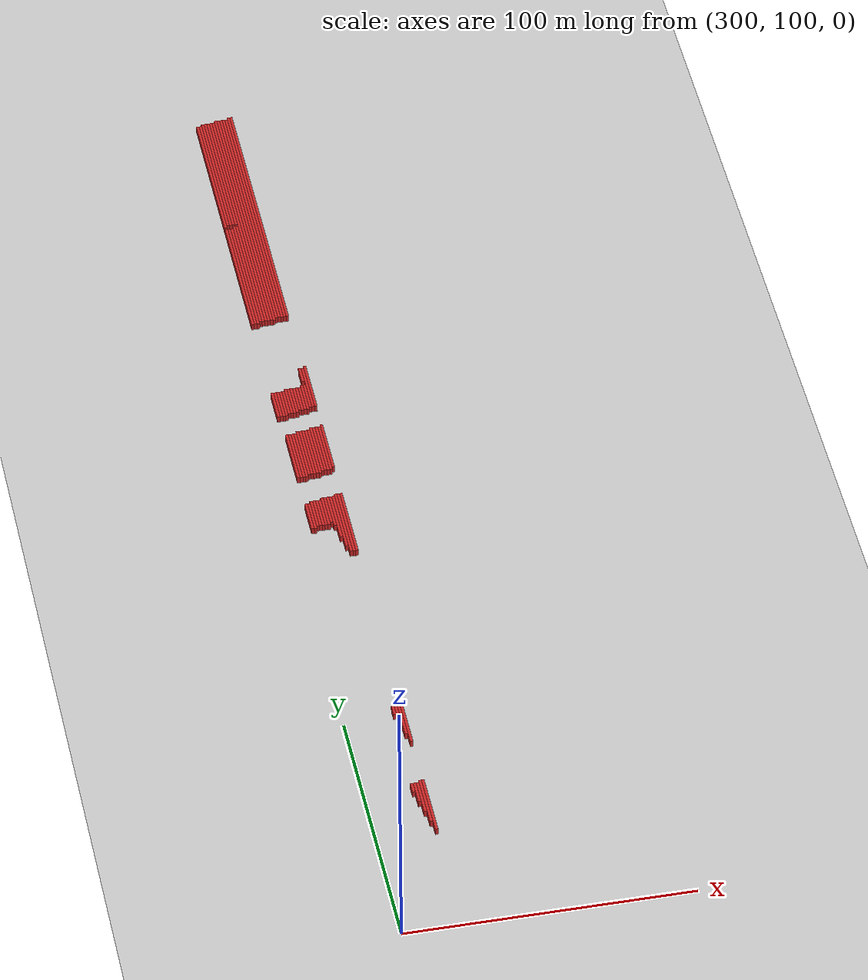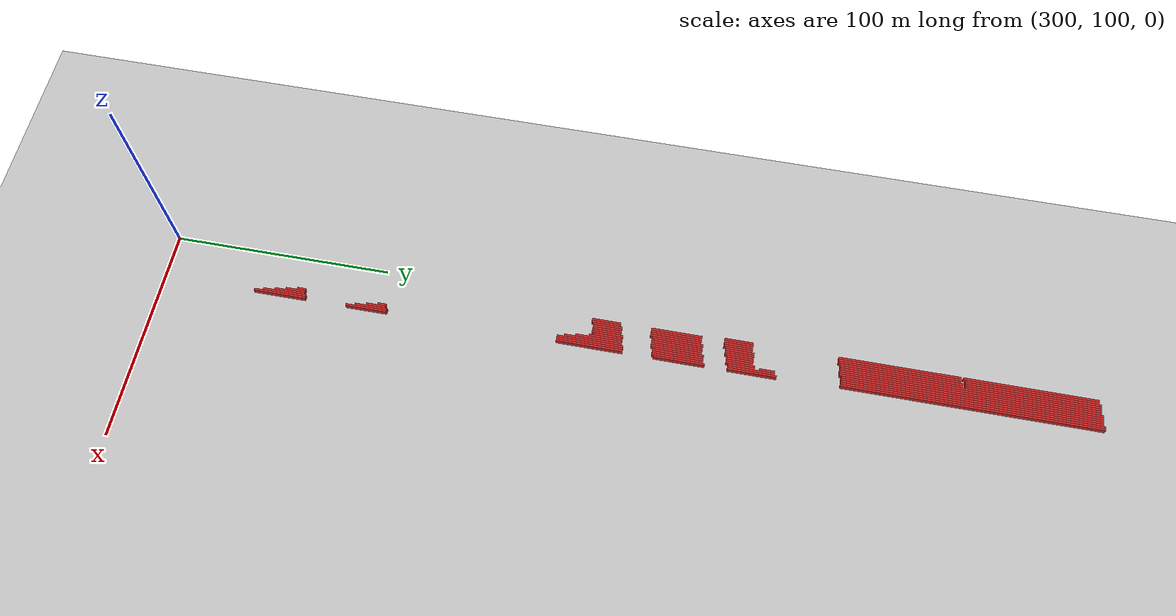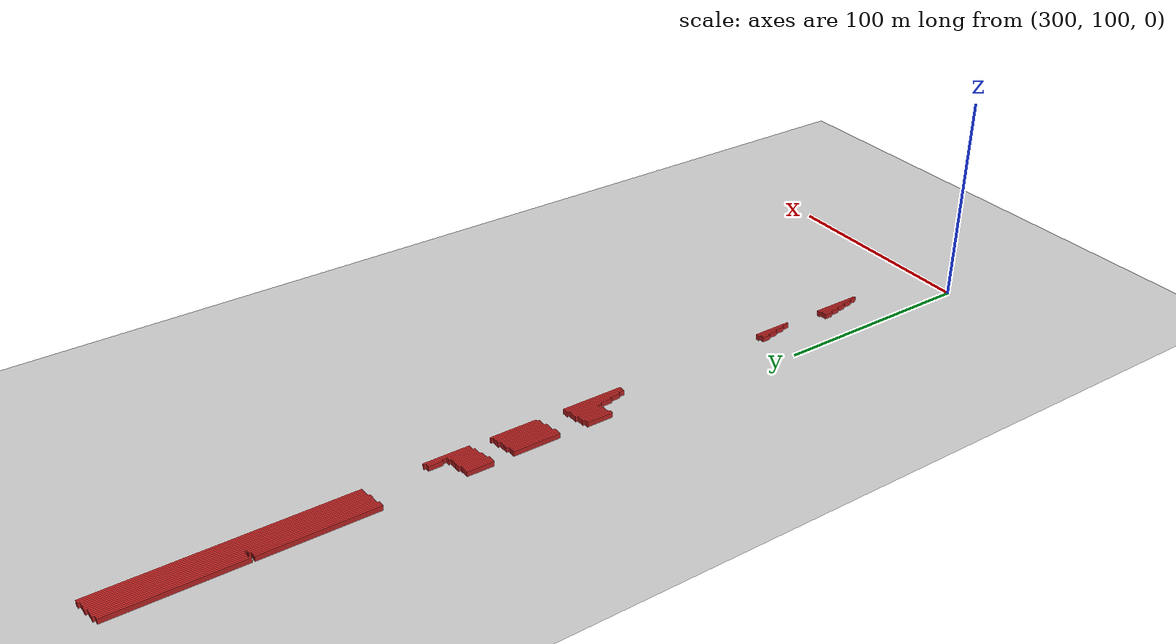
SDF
<sdf version="1.4">
 <world name="1_wall">
  <model name="ground_plane">
   <static>1</static>
   <link name="link">
    <collision name="collision">
     <geometry><plane><normal>0 0 1</normal><size>1000 1000</size></plane></geometry>
     <surface><friction><ode><mu>100</mu><mu2>50</mu2></ode></friction></surface>
    </collision>
    <visual name="visual">
     <cast_shadows>0</cast_shadows>
     <geometry><plane><normal>0 0 1</normal><size>10000 10000</size></plane></geometry>
     <material>
      <script><uri>file://media/materials/scripts/gazebo.material</uri><name>Gazebo/Grey</name></script>
     </material>
    </visual>
    <velocity_decay><linear>0</linear><angular>0</angular></velocity_decay>
   </link>
  </model>
  <model name="Wall_1655">
   <static>1</static>
   <link name="Wall_1655">
    <collision name="Wall_Collision_1655">
     <geometry><box><size>13.0 1.0 2.5</size></box></geometry>
     <pose>0 0 1.25 0 -0 0</pose>
    </collision>
    <visual name="Wall_Visual_1655">
     <pose>0 0 1.25 0 -0 0</pose>
     <geometry><box><size>13.0 1.0 2.5</size></box></geometry>
     <material>
      <script><uri>file://media/materials/scripts/gazebo.material</uri><name>Gazebo/Red</name></script>
     </material>
    </visual>
    <velocity_decay><linear>0</linear><angular>0</angular></velocity_decay>
    <pose>306.5 363.5 0 0 0 1.5707963267948966</pose>
   </link>
  </model>
  <model name="Wall_1656">
   <static>1</static>
   <link name="Wall_1656">
    <collision name="Wall_Collision_1656">
     <geometry><box><size>54.0 1.0 2.5</size></box></geometry>
     <pose>0 0 1.25 0 -0 0</pose>
    </collision>
    <visual name="Wall_Visual_1656">
     <pose>0 0 1.25 0 -0 0</pose>
     <geometry><box><size>54.0 1.0 2.5</size></box></geometry>
     <material>
      <script><uri>file://media/materials/scripts/gazebo.material</uri><name>Gazebo/Red</name></script>
     </material>
    </visual>
    <velocity_decay><linear>0</linear><angular>0</angular></velocity_decay>
    <pose>306.5 435.0 0 0 0 1.5707963267948966</pose>
   </link>
  </model>
  <model name="Wall_1657">
   <static>1</static>
   <link name="Wall_1657">
    <collision name="Wall_Collision_1657">
     <geometry><box><size>59.0 1.0 2.5</size></box></geometry>
     <pose>0 0 1.25 0 -0 0</pose>
    </collision>
    <visual name="Wall_Visual_1657">
     <pose>0 0 1.25 0 -0 0</pose>
     <geometry><box><size>59.0 1.0 2.5</size></box></geometry>
     <material>
      <script><uri>file://media/materials/scripts/gazebo.material</uri><name>Gazebo/Red</name></script>
     </material>
    </visual>
    <velocity_decay><linear>0</linear><angular>0</angular></velocity_decay>
    <pose>306.5 492.5 0 0 0 1.5707963267948966</pose>
   </link>
  </model>
  <model name="Wall_1658">
   <static>1</static>
   <link name="Wall_1658">
    <collision name="Wall_Collision_1658">
     <geometry><box><size>13.0 1.0 2.5</size></box></geometry>
     <pose>0 0 1.25 0 -0 0</pose>
    </collision>
    <visual name="Wall_Visual_1658">
     <pose>0 0 1.25 0 -0 0</pose>
     <geometry><box><size>13.0 1.0 2.5</size></box></geometry>
     <material>
      <script><uri>file://media/materials/scripts/gazebo.material</uri><name>Gazebo/Red</name></script>
     </material>
    </visual>
    <velocity_decay><linear>0</linear><angular>0</angular></velocity_decay>
    <pose>307.5 303.5 0 0 0 1.5707963267948966</pose>
   </link>
  </model>
  <model name="Wall_1659">
   <static>1</static>
   <link name="Wall_1659">
    <collision name="Wall_Collision_1659">
     <geometry><box><size>23.0 1.0 2.5</size></box></geometry>
     <pose>0 0 1.25 0 -0 0</pose>
    </collision>
    <visual name="Wall_Visual_1659">
     <pose>0 0 1.25 0 -0 0</pose>
     <geometry><box><size>23.0 1.0 2.5</size></box></geometry>
     <material>
      <script><uri>file://media/materials/scripts/gazebo.material</uri><name>Gazebo/Red</name></script>
     </material>
    </visual>
    <velocity_decay><linear>0</linear><angular>0</angular></velocity_decay>
    <pose>307.5 335.5 0 0 0 1.5707963267948966</pose>
   </link>
  </model>
  <model name="Wall_1660">
   <static>1</static>
   <link name="Wall_1660">
    <collision name="Wall_Collision_1660">
     <geometry><box><size>13.0 1.0 2.5</size></box></geometry>
     <pose>0 0 1.25 0 -0 0</pose>
    </collision>
    <visual name="Wall_Visual_1660">
     <pose>0 0 1.25 0 -0 0</pose>
     <geometry><box><size>13.0 1.0 2.5</size></box></geometry>
     <material>
      <script><uri>file://media/materials/scripts/gazebo.material</uri><name>Gazebo/Red</name></script>
     </material>
    </visual>
    <velocity_decay><linear>0</linear><angular>0</angular></velocity_decay>
    <pose>307.5 363.5 0 0 0 1.5707963267948966</pose>
   </link>
  </model>
  <model name="Wall_1661">
   <static>1</static>
   <link name="Wall_1661">
    <collision name="Wall_Collision_1661">
     <geometry><box><size>54.0 1.0 2.5</size></box></geometry>
     <pose>0 0 1.25 0 -0 0</pose>
    </collision>
    <visual name="Wall_Visual_1661">
     <pose>0 0 1.25 0 -0 0</pose>
     <geometry><box><size>54.0 1.0 2.5</size></box></geometry>
     <material>
      <script><uri>file://media/materials/scripts/gazebo.material</uri><name>Gazebo/Red</name></script>
     </material>
    </visual>
    <velocity_decay><linear>0</linear><angular>0</angular></velocity_decay>
    <pose>307.5 435.0 0 0 0 1.5707963267948966</pose>
   </link>
  </model>
  <model name="Wall_1662">
   <static>1</static>
   <link name="Wall_1662">
    <collision name="Wall_Collision_1662">
     <geometry><box><size>58.0 1.0 2.5</size></box></geometry>
     <pose>0 0 1.25 0 -0 0</pose>
    </collision>
    <visual name="Wall_Visual_1662">
     <pose>0 0 1.25 0 -0 0</pose>
     <geometry><box><size>58.0 1.0 2.5</size></box></geometry>
     <material>
      <script><uri>file://media/materials/scripts/gazebo.material</uri><name>Gazebo/Red</name></script>
     </material>
    </visual>
    <velocity_decay><linear>0</linear><angular>0</angular></velocity_decay>
    <pose>307.5 493.0 0 0 0 1.5707963267948966</pose>
   </link>
  </model>
  <model name="Wall_1663">
   <static>1</static>
   <link name="Wall_1663">
    <collision name="Wall_Collision_1663">
     <geometry><box><size>13.0 1.0 2.5</size></box></geometry>
     <pose>0 0 1.25 0 -0 0</pose>
    </collision>
    <visual name="Wall_Visual_1663">
     <pose>0 0 1.25 0 -0 0</pose>
     <geometry><box><size>13.0 1.0 2.5</size></box></geometry>
     <material>
      <script><uri>file://media/materials/scripts/gazebo.material</uri><name>Gazebo/Red</name></script>
     </material>
    </visual>
    <velocity_decay><linear>0</linear><angular>0</angular></velocity_decay>
    <pose>308.5 303.5 0 0 0 1.5707963267948966</pose>
   </link>
  </model>
  <model name="Wall_1664">
   <static>1</static>
   <link name="Wall_1664">
    <collision name="Wall_Collision_1664">
     <geometry><box><size>23.0 1.0 2.5</size></box></geometry>
     <pose>0 0 1.25 0 -0 0</pose>
    </collision>
    <visual name="Wall_Visual_1664">
     <pose>0 0 1.25 0 -0 0</pose>
     <geometry><box><size>23.0 1.0 2.5</size></box></geometry>
     <material>
      <script><uri>file://media/materials/scripts/gazebo.material</uri><name>Gazebo/Red</name></script>
     </material>
    </visual>
    <velocity_decay><linear>0</linear><angular>0</angular></velocity_decay>
    <pose>308.5 335.5 0 0 0 1.5707963267948966</pose>
   </link>
  </model>
  <model name="Wall_1665">
   <static>1</static>
   <link name="Wall_1665">
    <collision name="Wall_Collision_1665">
     <geometry><box><size>13.0 1.0 2.5</size></box></geometry>
     <pose>0 0 1.25 0 -0 0</pose>
    </collision>
    <visual name="Wall_Visual_1665">
     <pose>0 0 1.25 0 -0 0</pose>
     <geometry><box><size>13.0 1.0 2.5</size></box></geometry>
     <material>
      <script><uri>file://media/materials/scripts/gazebo.material</uri><name>Gazebo/Red</name></script>
     </material>
    </visual>
    <velocity_decay><linear>0</linear><angular>0</angular></velocity_decay>
    <pose>308.5 363.5 0 0 0 1.5707963267948966</pose>
   </link>
  </model>
  <model name="Wall_1666">
   <static>1</static>
   <link name="Wall_1666">
    <collision name="Wall_Collision_1666">
     <geometry><box><size>54.0 1.0 2.5</size></box></geometry>
     <pose>0 0 1.25 0 -0 0</pose>
    </collision>
    <visual name="Wall_Visual_1666">
     <pose>0 0 1.25 0 -0 0</pose>
     <geometry><box><size>54.0 1.0 2.5</size></box></geometry>
     <material>
      <script><uri>file://media/materials/scripts/gazebo.material</uri><name>Gazebo/Red</name></script>
     </material>
    </visual>
    <velocity_decay><linear>0</linear><angular>0</angular></velocity_decay>
    <pose>308.5 435.0 0 0 0 1.5707963267948966</pose>
   </link>
  </model>
  <model name="Wall_1667">
   <static>1</static>
   <link name="Wall_1667">
    <collision name="Wall_Collision_1667">
     <geometry><box><size>59.0 1.0 2.5</size></box></geometry>
     <pose>0 0 1.25 0 -0 0</pose>
    </collision>
    <visual name="Wall_Visual_1667">
     <pose>0 0 1.25 0 -0 0</pose>
     <geometry><box><size>59.0 1.0 2.5</size></box></geometry>
     <material>
      <script><uri>file://media/materials/scripts/gazebo.material</uri><name>Gazebo/Red</name></script>
     </material>
    </visual>
    <velocity_decay><linear>0</linear><angular>0</angular></velocity_decay>
    <pose>308.5 493.5 0 0 0 1.5707963267948966</pose>
   </link>
  </model>
  <model name="Wall_1668">
   <static>1</static>
   <link name="Wall_1668">
    <collision name="Wall_Collision_1668">
     <geometry><box><size>13.0 1.0 2.5</size></box></geometry>
     <pose>0 0 1.25 0 -0 0</pose>
    </collision>
    <visual name="Wall_Visual_1668">
     <pose>0 0 1.25 0 -0 0</pose>
     <geometry><box><size>13.0 1.0 2.5</size></box></geometry>
     <material>
      <script><uri>file://media/materials/scripts/gazebo.material</uri><name>Gazebo/Red</name></script>
     </material>
    </visual>
    <velocity_decay><linear>0</linear><angular>0</angular></velocity_decay>
    <pose>309.5 304.5 0 0 0 1.5707963267948966</pose>
   </link>
  </model>
  <model name="Wall_1669">
   <static>1</static>
   <link name="Wall_1669">
    <collision name="Wall_Collision_1669">
     <geometry><box><size>23.0 1.0 2.5</size></box></geometry>
     <pose>0 0 1.25 0 -0 0</pose>
    </collision>
    <visual name="Wall_Visual_1669">
     <pose>0 0 1.25 0 -0 0</pose>
     <geometry><box><size>23.0 1.0 2.5</size></box></geometry>
     <material>
      <script><uri>file://media/materials/scripts/gazebo.material</uri><name>Gazebo/Red</name></script>
     </material>
    </visual>
    <velocity_decay><linear>0</linear><angular>0</angular></velocity_decay>
    <pose>309.5 335.5 0 0 0 1.5707963267948966</pose>
   </link>
  </model>
  <model name="Wall_1670">
   <static>1</static>
   <link name="Wall_1670">
    <collision name="Wall_Collision_1670">
     <geometry><box><size>13.0 1.0 2.5</size></box></geometry>
     <pose>0 0 1.25 0 -0 0</pose>
    </collision>
    <visual name="Wall_Visual_1670">
     <pose>0 0 1.25 0 -0 0</pose>
     <geometry><box><size>13.0 1.0 2.5</size></box></geometry>
     <material>
      <script><uri>file://media/materials/scripts/gazebo.material</uri><name>Gazebo/Red</name></script>
     </material>
    </visual>
    <velocity_decay><linear>0</linear><angular>0</angular></velocity_decay>
    <pose>309.5 363.5 0 0 0 1.5707963267948966</pose>
   </link>
  </model>
  <model name="Wall_1671">
   <static>1</static>
   <link name="Wall_1671">
    <collision name="Wall_Collision_1671">
     <geometry><box><size>54.0 1.0 2.5</size></box></geometry>
     <pose>0 0 1.25 0 -0 0</pose>
    </collision>
    <visual name="Wall_Visual_1671">
     <pose>0 0 1.25 0 -0 0</pose>
     <geometry><box><size>54.0 1.0 2.5</size></box></geometry>
     <material>
      <script><uri>file://media/materials/scripts/gazebo.material</uri><name>Gazebo/Red</name></script>
     </material>
    </visual>
    <velocity_decay><linear>0</linear><angular>0</angular></velocity_decay>
    <pose>309.5 436.0 0 0 0 1.5707963267948966</pose>
   </link>
  </model>
  <model name="Wall_1672">
   <static>1</static>
   <link name="Wall_1672">
    <collision name="Wall_Collision_1672">
     <geometry><box><size>59.0 1.0 2.5</size></box></geometry>
     <pose>0 0 1.25 0 -0 0</pose>
    </collision>
    <visual name="Wall_Visual_1672">
     <pose>0 0 1.25 0 -0 0</pose>
     <geometry><box><size>59.0 1.0 2.5</size></box></geometry>
     <material>
      <script><uri>file://media/materials/scripts/gazebo.material</uri><name>Gazebo/Red</name></script>
     </material>
    </visual>
    <velocity_decay><linear>0</linear><angular>0</angular></velocity_decay>
    <pose>309.5 493.5 0 0 0 1.5707963267948966</pose>
   </link>
  </model>
  <model name="Wall_1673">
   <static>1</static>
   <link name="Wall_1673">
    <collision name="Wall_Collision_1673">
     <geometry><box><size>13.0 1.0 2.5</size></box></geometry>
     <pose>0 0 1.25 0 -0 0</pose>
    </collision>
    <visual name="Wall_Visual_1673">
     <pose>0 0 1.25 0 -0 0</pose>
     <geometry><box><size>13.0 1.0 2.5</size></box></geometry>
     <material>
      <script><uri>file://media/materials/scripts/gazebo.material</uri><name>Gazebo/Red</name></script>
     </material>
    </visual>
    <velocity_decay><linear>0</linear><angular>0</angular></velocity_decay>
    <pose>310.5 304.5 0 0 0 1.5707963267948966</pose>
   </link>
  </model>
  <model name="Wall_1674">
   <static>1</static>
   <link name="Wall_1674">
    <collision name="Wall_Collision_1674">
     <geometry><box><size>23.0 1.0 2.5</size></box></geometry>
     <pose>0 0 1.25 0 -0 0</pose>
    </collision>
    <visual name="Wall_Visual_1674">
     <pose>0 0 1.25 0 -0 0</pose>
     <geometry><box><size>23.0 1.0 2.5</size></box></geometry>
     <material>
      <script><uri>file://media/materials/scripts/gazebo.material</uri><name>Gazebo/Red</name></script>
     </material>
    </visual>
    <velocity_decay><linear>0</linear><angular>0</angular></velocity_decay>
    <pose>310.5 335.5 0 0 0 1.5707963267948966</pose>
   </link>
  </model>
  <model name="Wall_1675">
   <static>1</static>
   <link name="Wall_1675">
    <collision name="Wall_Collision_1675">
     <geometry><box><size>12.0 1.0 2.5</size></box></geometry>
     <pose>0 0 1.25 0 -0 0</pose>
    </collision>
    <visual name="Wall_Visual_1675">
     <pose>0 0 1.25 0 -0 0</pose>
     <geometry><box><size>12.0 1.0 2.5</size></box></geometry>
     <material>
      <script><uri>file://media/materials/scripts/gazebo.material</uri><name>Gazebo/Red</name></script>
     </material>
    </visual>
    <velocity_decay><linear>0</linear><angular>0</angular></velocity_decay>
    <pose>310.5 364.0 0 0 0 1.5707963267948966</pose>
   </link>
  </model>
  <model name="Wall_1676">
   <static>1</static>
   <link name="Wall_1676">
    <collision name="Wall_Collision_1676">
     <geometry><box><size>54.0 1.0 2.5</size></box></geometry>
     <pose>0 0 1.25 0 -0 0</pose>
    </collision>
    <visual name="Wall_Visual_1676">
     <pose>0 0 1.25 0 -0 0</pose>
     <geometry><box><size>54.0 1.0 2.5</size></box></geometry>
     <material>
      <script><uri>file://media/materials/scripts/gazebo.material</uri><name>Gazebo/Red</name></script>
     </material>
    </visual>
    <velocity_decay><linear>0</linear><angular>0</angular></velocity_decay>
    <pose>310.5 436.0 0 0 0 1.5707963267948966</pose>
   </link>
  </model>
  <model name="Wall_1677">
   <static>1</static>
   <link name="Wall_1677">
    <collision name="Wall_Collision_1677">
     <geometry><box><size>59.0 1.0 2.5</size></box></geometry>
     <pose>0 0 1.25 0 -0 0</pose>
    </collision>
    <visual name="Wall_Visual_1677">
     <pose>0 0 1.25 0 -0 0</pose>
     <geometry><box><size>59.0 1.0 2.5</size></box></geometry>
     <material>
      <script><uri>file://media/materials/scripts/gazebo.material</uri><name>Gazebo/Red</name></script>
     </material>
    </visual>
    <velocity_decay><linear>0</linear><angular>0</angular></velocity_decay>
    <pose>310.5 493.5 0 0 0 1.5707963267948966</pose>
   </link>
  </model>
  <model name="Wall_1678">
   <static>1</static>
   <link name="Wall_1678">
    <collision name="Wall_Collision_1678">
     <geometry><box><size>13.0 1.0 2.5</size></box></geometry>
     <pose>0 0 1.25 0 -0 0</pose>
    </collision>
    <visual name="Wall_Visual_1678">
     <pose>0 0 1.25 0 -0 0</pose>
     <geometry><box><size>13.0 1.0 2.5</size></box></geometry>
     <material>
      <script><uri>file://media/materials/scripts/gazebo.material</uri><name>Gazebo/Red</name></script>
     </material>
    </visual>
    <velocity_decay><linear>0</linear><angular>0</angular></velocity_decay>
    <pose>311.5 304.5 0 0 0 1.5707963267948966</pose>
   </link>
  </model>
  <model name="Wall_1679">
   <static>1</static>
   <link name="Wall_1679">
    <collision name="Wall_Collision_1679">
     <geometry><box><size>23.0 1.0 2.5</size></box></geometry>
     <pose>0 0 1.25 0 -0 0</pose>
    </collision>
    <visual name="Wall_Visual_1679">
     <pose>0 0 1.25 0 -0 0</pose>
     <geometry><box><size>23.0 1.0 2.5</size></box></geometry>
     <material>
      <script><uri>file://media/materials/scripts/gazebo.material</uri><name>Gazebo/Red</name></script>
     </material>
    </visual>
    <velocity_decay><linear>0</linear><angular>0</angular></velocity_decay>
    <pose>311.5 336.5 0 0 0 1.5707963267948966</pose>
   </link>
  </model>
  <model name="Wall_1680">
   <static>1</static>
   <link name="Wall_1680">
    <collision name="Wall_Collision_1680">
     <geometry><box><size>13.0 1.0 2.5</size></box></geometry>
     <pose>0 0 1.25 0 -0 0</pose>
    </collision>
    <visual name="Wall_Visual_1680">
     <pose>0 0 1.25 0 -0 0</pose>
     <geometry><box><size>13.0 1.0 2.5</size></box></geometry>
     <material>
      <script><uri>file://media/materials/scripts/gazebo.material</uri><name>Gazebo/Red</name></script>
     </material>
    </visual>
    <velocity_decay><linear>0</linear><angular>0</angular></velocity_decay>
    <pose>311.5 364.5 0 0 0 1.5707963267948966</pose>
   </link>
  </model>
  <model name="Wall_1681">
   <static>1</static>
   <link name="Wall_1681">
    <collision name="Wall_Collision_1681">
     <geometry><box><size>114.0 1.0 2.5</size></box></geometry>
     <pose>0 0 1.25 0 -0 0</pose>
    </collision>
    <visual name="Wall_Visual_1681">
     <pose>0 0 1.25 0 -0 0</pose>
     <geometry><box><size>114.0 1.0 2.5</size></box></geometry>
     <material>
      <script><uri>file://media/materials/scripts/gazebo.material</uri><name>Gazebo/Red</name></script>
     </material>
    </visual>
    <velocity_decay><linear>0</linear><angular>0</angular></velocity_decay>
    <pose>311.5 466.0 0 0 0 1.5707963267948966</pose>
   </link>
  </model>
  <model name="Wall_1682">
   <static>1</static>
   <link name="Wall_1682">
    <collision name="Wall_Collision_1682">
     <geometry><box><size>13.0 1.0 2.5</size></box></geometry>
     <pose>0 0 1.25 0 -0 0</pose>
    </collision>
    <visual name="Wall_Visual_1682">
     <pose>0 0 1.25 0 -0 0</pose>
     <geometry><box><size>13.0 1.0 2.5</size></box></geometry>
     <material>
      <script><uri>file://media/materials/scripts/gazebo.material</uri><name>Gazebo/Red</name></script>
     </material>
    </visual>
    <velocity_decay><linear>0</linear><angular>0</angular></velocity_decay>
    <pose>312.5 304.5 0 0 0 1.5707963267948966</pose>
   </link>
  </model>
  <model name="Wall_1683">
   <static>1</static>
   <link name="Wall_1683">
    <collision name="Wall_Collision_1683">
     <geometry><box><size>23.0 1.0 2.5</size></box></geometry>
     <pose>0 0 1.25 0 -0 0</pose>
    </collision>
    <visual name="Wall_Visual_1683">
     <pose>0 0 1.25 0 -0 0</pose>
     <geometry><box><size>23.0 1.0 2.5</size></box></geometry>
     <material>
      <script><uri>file://media/materials/scripts/gazebo.material</uri><name>Gazebo/Red</name></script>
     </material>
    </visual>
    <velocity_decay><linear>0</linear><angular>0</angular></velocity_decay>
    <pose>312.5 336.5 0 0 0 1.5707963267948966</pose>
   </link>
  </model>
  <model name="Wall_1684">
   <static>1</static>
   <link name="Wall_1684">
    <collision name="Wall_Collision_1684">
     <geometry><box><size>13.0 1.0 2.5</size></box></geometry>
     <pose>0 0 1.25 0 -0 0</pose>
    </collision>
    <visual name="Wall_Visual_1684">
     <pose>0 0 1.25 0 -0 0</pose>
     <geometry><box><size>13.0 1.0 2.5</size></box></geometry>
     <material>
      <script><uri>file://media/materials/scripts/gazebo.material</uri><name>Gazebo/Red</name></script>
     </material>
    </visual>
    <velocity_decay><linear>0</linear><angular>0</angular></velocity_decay>
    <pose>312.5 364.5 0 0 0 1.5707963267948966</pose>
   </link>
  </model>
  <model name="Wall_1685">
   <static>1</static>
   <link name="Wall_1685">
    <collision name="Wall_Collision_1685">
     <geometry><box><size>114.0 1.0 2.5</size></box></geometry>
     <pose>0 0 1.25 0 -0 0</pose>
    </collision>
    <visual name="Wall_Visual_1685">
     <pose>0 0 1.25 0 -0 0</pose>
     <geometry><box><size>114.0 1.0 2.5</size></box></geometry>
     <material>
      <script><uri>file://media/materials/scripts/gazebo.material</uri><name>Gazebo/Red</name></script>
     </material>
    </visual>
    <velocity_decay><linear>0</linear><angular>0</angular></velocity_decay>
    <pose>312.5 466.0 0 0 0 1.5707963267948966</pose>
   </link>
  </model>
  <model name="Wall_1686">
   <static>1</static>
   <link name="Wall_1686">
    <collision name="Wall_Collision_1686">
     <geometry><box><size>14.0 1.0 2.5</size></box></geometry>
     <pose>0 0 1.25 0 -0 0</pose>
    </collision>
    <visual name="Wall_Visual_1686">
     <pose>0 0 1.25 0 -0 0</pose>
     <geometry><box><size>14.0 1.0 2.5</size></box></geometry>
     <material>
      <script><uri>file://media/materials/scripts/gazebo.material</uri><name>Gazebo/Red</name></script>
     </material>
    </visual>
    <velocity_decay><linear>0</linear><angular>0</angular></velocity_decay>
    <pose>313.5 305.0 0 0 0 1.5707963267948966</pose>
   </link>
  </model>
  <model name="Wall_1687">
   <static>1</static>
   <link name="Wall_1687">
    <collision name="Wall_Collision_1687">
     <geometry><box><size>23.0 1.0 2.5</size></box></geometry>
     <pose>0 0 1.25 0 -0 0</pose>
    </collision>
    <visual name="Wall_Visual_1687">
     <pose>0 0 1.25 0 -0 0</pose>
     <geometry><box><size>23.0 1.0 2.5</size></box></geometry>
     <material>
      <script><uri>file://media/materials/scripts/gazebo.material</uri><name>Gazebo/Red</name></script>
     </material>
    </visual>
    <velocity_decay><linear>0</linear><angular>0</angular></velocity_decay>
    <pose>313.5 336.5 0 0 0 1.5707963267948966</pose>
   </link>
  </model>
  <model name="Wall_1688">
   <static>1</static>
   <link name="Wall_1688">
    <collision name="Wall_Collision_1688">
     <geometry><box><size>13.0 1.0 2.5</size></box></geometry>
     <pose>0 0 1.25 0 -0 0</pose>
    </collision>
    <visual name="Wall_Visual_1688">
     <pose>0 0 1.25 0 -0 0</pose>
     <geometry><box><size>13.0 1.0 2.5</size></box></geometry>
     <material>
      <script><uri>file://media/materials/scripts/gazebo.material</uri><name>Gazebo/Red</name></script>
     </material>
    </visual>
    <velocity_decay><linear>0</linear><angular>0</angular></velocity_decay>
    <pose>313.5 364.5 0 0 0 1.5707963267948966</pose>
   </link>
  </model>
  <model name="Wall_1689">
   <static>1</static>
   <link name="Wall_1689">
    <collision name="Wall_Collision_1689">
     <geometry><box><size>115.0 1.0 2.5</size></box></geometry>
     <pose>0 0 1.25 0 -0 0</pose>
    </collision>
    <visual name="Wall_Visual_1689">
     <pose>0 0 1.25 0 -0 0</pose>
     <geometry><box><size>115.0 1.0 2.5</size></box></geometry>
     <material>
      <script><uri>file://media/materials/scripts/gazebo.material</uri><name>Gazebo/Red</name></script>
     </material>
    </visual>
    <velocity_decay><linear>0</linear><angular>0</angular></velocity_decay>
    <pose>313.5 466.5 0 0 0 1.5707963267948966</pose>
   </link>
  </model>
  <model name="Wall_1690">
   <static>1</static>
   <link name="Wall_1690">
    <collision name="Wall_Collision_1690">
     <geometry><box><size>13.0 1.0 2.5</size></box></geometry>
     <pose>0 0 1.25 0 -0 0</pose>
    </collision>
    <visual name="Wall_Visual_1690">
     <pose>0 0 1.25 0 -0 0</pose>
     <geometry><box><size>13.0 1.0 2.5</size></box></geometry>
     <material>
      <script><uri>file://media/materials/scripts/gazebo.material</uri><name>Gazebo/Red</name></script>
     </material>
    </visual>
    <velocity_decay><linear>0</linear><angular>0</angular></velocity_decay>
    <pose>314.5 305.5 0 0 0 1.5707963267948966</pose>
   </link>
  </model>
  <model name="Wall_1691">
   <static>1</static>
   <link name="Wall_1691">
    <collision name="Wall_Collision_1691">
     <geometry><box><size>23.0 1.0 2.5</size></box></geometry>
     <pose>0 0 1.25 0 -0 0</pose>
    </collision>
    <visual name="Wall_Visual_1691">
     <pose>0 0 1.25 0 -0 0</pose>
     <geometry><box><size>23.0 1.0 2.5</size></box></geometry>
     <material>
      <script><uri>file://media/materials/scripts/gazebo.material</uri><name>Gazebo/Red</name></script>
     </material>
    </visual>
    <velocity_decay><linear>0</linear><angular>0</angular></velocity_decay>
    <pose>314.5 336.5 0 0 0 1.5707963267948966</pose>
   </link>
  </model>
  <model name="Wall_1692">
   <static>1</static>
   <link name="Wall_1692">
    <collision name="Wall_Collision_1692">
     <geometry><box><size>12.0 1.0 2.5</size></box></geometry>
     <pose>0 0 1.25 0 -0 0</pose>
    </collision>
    <visual name="Wall_Visual_1692">
     <pose>0 0 1.25 0 -0 0</pose>
     <geometry><box><size>12.0 1.0 2.5</size></box></geometry>
     <material>
      <script><uri>file://media/materials/scripts/gazebo.material</uri><name>Gazebo/Red</name></script>
     </material>
    </visual>
    <velocity_decay><linear>0</linear><angular>0</angular></velocity_decay>
    <pose>314.5 365.0 0 0 0 1.5707963267948966</pose>
   </link>
  </model>
  <model name="Wall_1693">
   <static>1</static>
   <link name="Wall_1693">
    <collision name="Wall_Collision_1693">
     <geometry><box><size>115.0 1.0 2.5</size></box></geometry>
     <pose>0 0 1.25 0 -0 0</pose>
    </collision>
    <visual name="Wall_Visual_1693">
     <pose>0 0 1.25 0 -0 0</pose>
     <geometry><box><size>115.0 1.0 2.5</size></box></geometry>
     <material>
      <script><uri>file://media/materials/scripts/gazebo.material</uri><name>Gazebo/Red</name></script>
     </material>
    </visual>
    <velocity_decay><linear>0</linear><angular>0</angular></velocity_decay>
    <pose>314.5 466.5 0 0 0 1.5707963267948966</pose>
   </link>
  </model>
  <model name="Wall_1694">
   <static>1</static>
   <link name="Wall_1694">
    <collision name="Wall_Collision_1694">
     <geometry><box><size>15.0 1.0 2.5</size></box></geometry>
     <pose>0 0 1.25 0 -0 0</pose>
    </collision>
    <visual name="Wall_Visual_1694">
     <pose>0 0 1.25 0 -0 0</pose>
     <geometry><box><size>15.0 1.0 2.5</size></box></geometry>
     <material>
      <script><uri>file://media/materials/scripts/gazebo.material</uri><name>Gazebo/Red</name></script>
     </material>
    </visual>
    <velocity_decay><linear>0</linear><angular>0</angular></velocity_decay>
    <pose>315.5 304.5 0 0 0 1.5707963267948966</pose>
   </link>
  </model>
  <model name="Wall_1695">
   <static>1</static>
   <link name="Wall_1695">
    <collision name="Wall_Collision_1695">
     <geometry><box><size>23.0 1.0 2.5</size></box></geometry>
     <pose>0 0 1.25 0 -0 0</pose>
    </collision>
    <visual name="Wall_Visual_1695">
     <pose>0 0 1.25 0 -0 0</pose>
     <geometry><box><size>23.0 1.0 2.5</size></box></geometry>
     <material>
      <script><uri>file://media/materials/scripts/gazebo.material</uri><name>Gazebo/Red</name></script>
     </material>
    </visual>
    <velocity_decay><linear>0</linear><angular>0</angular></velocity_decay>
    <pose>315.5 336.5 0 0 0 1.5707963267948966</pose>
   </link>
  </model>
  <model name="Wall_1696">
   <static>1</static>
   <link name="Wall_1696">
    <collision name="Wall_Collision_1696">
     <geometry><box><size>12.0 1.0 2.5</size></box></geometry>
     <pose>0 0 1.25 0 -0 0</pose>
    </collision>
    <visual name="Wall_Visual_1696">
     <pose>0 0 1.25 0 -0 0</pose>
     <geometry><box><size>12.0 1.0 2.5</size></box></geometry>
     <material>
      <script><uri>file://media/materials/scripts/gazebo.material</uri><name>Gazebo/Red</name></script>
     </material>
    </visual>
    <velocity_decay><linear>0</linear><angular>0</angular></velocity_decay>
    <pose>315.5 365.0 0 0 0 1.5707963267948966</pose>
   </link>
  </model>
  <model name="Wall_1697">
   <static>1</static>
   <link name="Wall_1697">
    <collision name="Wall_Collision_1697">
     <geometry><box><size>114.0 1.0 2.5</size></box></geometry>
     <pose>0 0 1.25 0 -0 0</pose>
    </collision>
    <visual name="Wall_Visual_1697">
     <pose>0 0 1.25 0 -0 0</pose>
     <geometry><box><size>114.0 1.0 2.5</size></box></geometry>
     <material>
      <script><uri>file://media/materials/scripts/gazebo.material</uri><name>Gazebo/Red</name></script>
     </material>
    </visual>
    <velocity_decay><linear>0</linear><angular>0</angular></velocity_decay>
    <pose>315.5 467.0 0 0 0 1.5707963267948966</pose>
   </link>
  </model>
  <model name="Wall_1698">
   <static>1</static>
   <link name="Wall_1698">
    <collision name="Wall_Collision_1698">
     <geometry><box><size>4.0 1.0 2.5</size></box></geometry>
     <pose>0 0 1.25 0 -0 0</pose>
    </collision>
    <visual name="Wall_Visual_1698">
     <pose>0 0 1.25 0 -0 0</pose>
     <geometry><box><size>4.0 1.0 2.5</size></box></geometry>
     <material>
      <script><uri>file://media/materials/scripts/gazebo.material</uri><name>Gazebo/Red</name></script>
     </material>
    </visual>
    <velocity_decay><linear>0</linear><angular>0</angular></velocity_decay>
    <pose>316.5 164.0 0 0 0 1.5707963267948966</pose>
   </link>
  </model>
  <model name="Wall_1699">
   <static>1</static>
   <link name="Wall_1699">
    <collision name="Wall_Collision_1699">
     <geometry><box><size>21.0 1.0 2.5</size></box></geometry>
     <pose>0 0 1.25 0 -0 0</pose>
    </collision>
    <visual name="Wall_Visual_1699">
     <pose>0 0 1.25 0 -0 0</pose>
     <geometry><box><size>21.0 1.0 2.5</size></box></geometry>
     <material>
      <script><uri>file://media/materials/scripts/gazebo.material</uri><name>Gazebo/Red</name></script>
     </material>
    </visual>
    <velocity_decay><linear>0</linear><angular>0</angular></velocity_decay>
    <pose>316.5 301.5 0 0 0 1.5707963267948966</pose>
   </link>
  </model>
  <model name="Wall_1700">
   <static>1</static>
   <link name="Wall_1700">
    <collision name="Wall_Collision_1700">
     <geometry><box><size>23.0 1.0 2.5</size></box></geometry>
     <pose>0 0 1.25 0 -0 0</pose>
    </collision>
    <visual name="Wall_Visual_1700">
     <pose>0 0 1.25 0 -0 0</pose>
     <geometry><box><size>23.0 1.0 2.5</size></box></geometry>
     <material>
      <script><uri>file://media/materials/scripts/gazebo.material</uri><name>Gazebo/Red</name></script>
     </material>
    </visual>
    <velocity_decay><linear>0</linear><angular>0</angular></velocity_decay>
    <pose>316.5 337.5 0 0 0 1.5707963267948966</pose>
   </link>
  </model>
  <model name="Wall_1701">
   <static>1</static>
   <link name="Wall_1701">
    <collision name="Wall_Collision_1701">
     <geometry><box><size>12.0 1.0 2.5</size></box></geometry>
     <pose>0 0 1.25 0 -0 0</pose>
    </collision>
    <visual name="Wall_Visual_1701">
     <pose>0 0 1.25 0 -0 0</pose>
     <geometry><box><size>12.0 1.0 2.5</size></box></geometry>
     <material>
      <script><uri>file://media/materials/scripts/gazebo.material</uri><name>Gazebo/Red</name></script>
     </material>
    </visual>
    <velocity_decay><linear>0</linear><angular>0</angular></velocity_decay>
    <pose>316.5 365.0 0 0 0 1.5707963267948966</pose>
   </link>
  </model>
  <model name="Wall_1702">
   <static>1</static>
   <link name="Wall_1702">
    <collision name="Wall_Collision_1702">
     <geometry><box><size>114.0 1.0 2.5</size></box></geometry>
     <pose>0 0 1.25 0 -0 0</pose>
    </collision>
    <visual name="Wall_Visual_1702">
     <pose>0 0 1.25 0 -0 0</pose>
     <geometry><box><size>114.0 1.0 2.5</size></box></geometry>
     <material>
      <script><uri>file://media/materials/scripts/gazebo.material</uri><name>Gazebo/Red</name></script>
     </material>
    </visual>
    <velocity_decay><linear>0</linear><angular>0</angular></velocity_decay>
    <pose>316.5 467.0 0 0 0 1.5707963267948966</pose>
   </link>
  </model>
  <model name="Wall_1703">
   <static>1</static>
   <link name="Wall_1703">
    <collision name="Wall_Collision_1703">
     <geometry><box><size>9.0 1.0 2.5</size></box></geometry>
     <pose>0 0 1.25 0 -0 0</pose>
    </collision>
    <visual name="Wall_Visual_1703">
     <pose>0 0 1.25 0 -0 0</pose>
     <geometry><box><size>9.0 1.0 2.5</size></box></geometry>
     <material>
      <script><uri>file://media/materials/scripts/gazebo.material</uri><name>Gazebo/Red</name></script>
     </material>
    </visual>
    <velocity_decay><linear>0</linear><angular>0</angular></velocity_decay>
    <pose>317.5 161.5 0 0 0 1.5707963267948966</pose>
   </link>
  </model>
  <model name="Wall_1704">
   <static>1</static>
   <link name="Wall_1704">
    <collision name="Wall_Collision_1704">
     <geometry><box><size>4.0 1.0 2.5</size></box></geometry>
     <pose>0 0 1.25 0 -0 0</pose>
    </collision>
    <visual name="Wall_Visual_1704">
     <pose>0 0 1.25 0 -0 0</pose>
     <geometry><box><size>4.0 1.0 2.5</size></box></geometry>
     <material>
      <script><uri>file://media/materials/scripts/gazebo.material</uri><name>Gazebo/Red</name></script>
     </material>
    </visual>
    <velocity_decay><linear>0</linear><angular>0</angular></velocity_decay>
    <pose>317.5 202.0 0 0 0 1.5707963267948966</pose>
   </link>
  </model>
  <model name="Wall_1705">
   <static>1</static>
   <link name="Wall_1705">
    <collision name="Wall_Collision_1705">
     <geometry><box><size>26.0 1.0 2.5</size></box></geometry>
     <pose>0 0 1.25 0 -0 0</pose>
    </collision>
    <visual name="Wall_Visual_1705">
     <pose>0 0 1.25 0 -0 0</pose>
     <geometry><box><size>26.0 1.0 2.5</size></box></geometry>
     <material>
      <script><uri>file://media/materials/scripts/gazebo.material</uri><name>Gazebo/Red</name></script>
     </material>
    </visual>
    <velocity_decay><linear>0</linear><angular>0</angular></velocity_decay>
    <pose>317.5 299.0 0 0 0 1.5707963267948966</pose>
   </link>
  </model>
  <model name="Wall_1706">
   <static>1</static>
   <link name="Wall_1706">
    <collision name="Wall_Collision_1706">
     <geometry><box><size>23.0 1.0 2.5</size></box></geometry>
     <pose>0 0 1.25 0 -0 0</pose>
    </collision>
    <visual name="Wall_Visual_1706">
     <pose>0 0 1.25 0 -0 0</pose>
     <geometry><box><size>23.0 1.0 2.5</size></box></geometry>
     <material>
      <script><uri>file://media/materials/scripts/gazebo.material</uri><name>Gazebo/Red</name></script>
     </material>
    </visual>
    <velocity_decay><linear>0</linear><angular>0</angular></velocity_decay>
    <pose>317.5 337.5 0 0 0 1.5707963267948966</pose>
   </link>
  </model>
  <model name="Wall_1707">
   <static>1</static>
   <link name="Wall_1707">
    <collision name="Wall_Collision_1707">
     <geometry><box><size>13.0 1.0 2.5</size></box></geometry>
     <pose>0 0 1.25 0 -0 0</pose>
    </collision>
    <visual name="Wall_Visual_1707">
     <pose>0 0 1.25 0 -0 0</pose>
     <geometry><box><size>13.0 1.0 2.5</size></box></geometry>
     <material>
      <script><uri>file://media/materials/scripts/gazebo.material</uri><name>Gazebo/Red</name></script>
     </material>
    </visual>
    <velocity_decay><linear>0</linear><angular>0</angular></velocity_decay>
    <pose>317.5 365.5 0 0 0 1.5707963267948966</pose>
   </link>
  </model>
  <model name="Wall_1708">
   <static>1</static>
   <link name="Wall_1708">
    <collision name="Wall_Collision_1708">
     <geometry><box><size>114.0 1.0 2.5</size></box></geometry>
     <pose>0 0 1.25 0 -0 0</pose>
    </collision>
    <visual name="Wall_Visual_1708">
     <pose>0 0 1.25 0 -0 0</pose>
     <geometry><box><size>114.0 1.0 2.5</size></box></geometry>
     <material>
      <script><uri>file://media/materials/scripts/gazebo.material</uri><name>Gazebo/Red</name></script>
     </material>
    </visual>
    <velocity_decay><linear>0</linear><angular>0</angular></velocity_decay>
    <pose>317.5 467.0 0 0 0 1.5707963267948966</pose>
   </link>
  </model>
  <model name="Wall_1709">
   <static>1</static>
   <link name="Wall_1709">
    <collision name="Wall_Collision_1709">
     <geometry><box><size>14.0 1.0 2.5</size></box></geometry>
     <pose>0 0 1.25 0 -0 0</pose>
    </collision>
    <visual name="Wall_Visual_1709">
     <pose>0 0 1.25 0 -0 0</pose>
     <geometry><box><size>14.0 1.0 2.5</size></box></geometry>
     <material>
      <script><uri>file://media/materials/scripts/gazebo.material</uri><name>Gazebo/Red</name></script>
     </material>
    </visual>
    <velocity_decay><linear>0</linear><angular>0</angular></velocity_decay>
    <pose>318.5 159.0 0 0 0 1.5707963267948966</pose>
   </link>
  </model>
  <model name="Wall_1710">
   <static>1</static>
   <link name="Wall_1710">
    <collision name="Wall_Collision_1710">
     <geometry><box><size>9.0 1.0 2.5</size></box></geometry>
     <pose>0 0 1.25 0 -0 0</pose>
    </collision>
    <visual name="Wall_Visual_1710">
     <pose>0 0 1.25 0 -0 0</pose>
     <geometry><box><size>9.0 1.0 2.5</size></box></geometry>
     <material>
      <script><uri>file://media/materials/scripts/gazebo.material</uri><name>Gazebo/Red</name></script>
     </material>
    </visual>
    <velocity_decay><linear>0</linear><angular>0</angular></velocity_decay>
    <pose>318.5 199.5 0 0 0 1.5707963267948966</pose>
   </link>
  </model>
  <model name="Wall_1711">
   <static>1</static>
   <link name="Wall_1711">
    <collision name="Wall_Collision_1711">
     <geometry><box><size>30.0 1.0 2.5</size></box></geometry>
     <pose>0 0 1.25 0 -0 0</pose>
    </collision>
    <visual name="Wall_Visual_1711">
     <pose>0 0 1.25 0 -0 0</pose>
     <geometry><box><size>30.0 1.0 2.5</size></box></geometry>
     <material>
      <script><uri>file://media/materials/scripts/gazebo.material</uri><name>Gazebo/Red</name></script>
     </material>
    </visual>
    <velocity_decay><linear>0</linear><angular>0</angular></velocity_decay>
    <pose>318.5 298.0 0 0 0 1.5707963267948966</pose>
   </link>
  </model>
  <model name="Wall_1712">
   <static>1</static>
   <link name="Wall_1712">
    <collision name="Wall_Collision_1712">
     <geometry><box><size>23.0 1.0 2.5</size></box></geometry>
     <pose>0 0 1.25 0 -0 0</pose>
    </collision>
    <visual name="Wall_Visual_1712">
     <pose>0 0 1.25 0 -0 0</pose>
     <geometry><box><size>23.0 1.0 2.5</size></box></geometry>
     <material>
      <script><uri>file://media/materials/scripts/gazebo.material</uri><name>Gazebo/Red</name></script>
     </material>
    </visual>
    <velocity_decay><linear>0</linear><angular>0</angular></velocity_decay>
    <pose>318.5 337.5 0 0 0 1.5707963267948966</pose>
   </link>
  </model>
  <model name="Wall_1713">
   <static>1</static>
   <link name="Wall_1713">
    <collision name="Wall_Collision_1713">
     <geometry><box><size>12.0 1.0 2.5</size></box></geometry>
     <pose>0 0 1.25 0 -0 0</pose>
    </collision>
    <visual name="Wall_Visual_1713">
     <pose>0 0 1.25 0 -0 0</pose>
     <geometry><box><size>12.0 1.0 2.5</size></box></geometry>
     <material>
      <script><uri>file://media/materials/scripts/gazebo.material</uri><name>Gazebo/Red</name></script>
     </material>
    </visual>
    <velocity_decay><linear>0</linear><angular>0</angular></velocity_decay>
    <pose>318.5 366.0 0 0 0 1.5707963267948966</pose>
   </link>
  </model>
  <model name="Wall_1714">
   <static>1</static>
   <link name="Wall_1714">
    <collision name="Wall_Collision_1714">
     <geometry><box><size>7.0 1.0 2.5</size></box></geometry>
     <pose>0 0 1.25 0 -0 0</pose>
    </collision>
    <visual name="Wall_Visual_1714">
     <pose>0 0 1.25 0 -0 0</pose>
     <geometry><box><size>7.0 1.0 2.5</size></box></geometry>
     <material>
      <script><uri>file://media/materials/scripts/gazebo.material</uri><name>Gazebo/Red</name></script>
     </material>
    </visual>
    <velocity_decay><linear>0</linear><angular>0</angular></velocity_decay>
    <pose>318.5 377.5 0 0 0 1.5707963267948966</pose>
   </link>
  </model>
  <model name="Wall_1715">
   <static>1</static>
   <link name="Wall_1715">
    <collision name="Wall_Collision_1715">
     <geometry><box><size>115.0 1.0 2.5</size></box></geometry>
     <pose>0 0 1.25 0 -0 0</pose>
    </collision>
    <visual name="Wall_Visual_1715">
     <pose>0 0 1.25 0 -0 0</pose>
     <geometry><box><size>115.0 1.0 2.5</size></box></geometry>
     <material>
      <script><uri>file://media/materials/scripts/gazebo.material</uri><name>Gazebo/Red</name></script>
     </material>
    </visual>
    <velocity_decay><linear>0</linear><angular>0</angular></velocity_decay>
    <pose>318.5 467.5 0 0 0 1.5707963267948966</pose>
   </link>
  </model>
  <model name="Wall_1716">
   <static>1</static>
   <link name="Wall_1716">
    <collision name="Wall_Collision_1716">
     <geometry><box><size>20.0 1.0 2.5</size></box></geometry>
     <pose>0 0 1.25 0 -0 0</pose>
    </collision>
    <visual name="Wall_Visual_1716">
     <pose>0 0 1.25 0 -0 0</pose>
     <geometry><box><size>20.0 1.0 2.5</size></box></geometry>
     <material>
      <script><uri>file://media/materials/scripts/gazebo.material</uri><name>Gazebo/Red</name></script>
     </material>
    </visual>
    <velocity_decay><linear>0</linear><angular>0</angular></velocity_decay>
    <pose>319.5 157.0 0 0 0 1.5707963267948966</pose>
   </link>
  </model>
  <model name="Wall_1717">
   <static>1</static>
   <link name="Wall_1717">
    <collision name="Wall_Collision_1717">
     <geometry><box><size>15.0 1.0 2.5</size></box></geometry>
     <pose>0 0 1.25 0 -0 0</pose>
    </collision>
    <visual name="Wall_Visual_1717">
     <pose>0 0 1.25 0 -0 0</pose>
     <geometry><box><size>15.0 1.0 2.5</size></box></geometry>
     <material>
      <script><uri>file://media/materials/scripts/gazebo.material</uri><name>Gazebo/Red</name></script>
     </material>
    </visual>
    <velocity_decay><linear>0</linear><angular>0</angular></velocity_decay>
    <pose>319.5 197.5 0 0 0 1.5707963267948966</pose>
   </link>
  </model>
  <model name="Wall_1718">
   <static>1</static>
   <link name="Wall_1718">
    <collision name="Wall_Collision_1718">
     <geometry><box><size>30.0 1.0 2.5</size></box></geometry>
     <pose>0 0 1.25 0 -0 0</pose>
    </collision>
    <visual name="Wall_Visual_1718">
     <pose>0 0 1.25 0 -0 0</pose>
     <geometry><box><size>30.0 1.0 2.5</size></box></geometry>
     <material>
      <script><uri>file://media/materials/scripts/gazebo.material</uri><name>Gazebo/Red</name></script>
     </material>
    </visual>
    <velocity_decay><linear>0</linear><angular>0</angular></velocity_decay>
    <pose>319.5 298.0 0 0 0 1.5707963267948966</pose>
   </link>
  </model>
  <model name="Wall_1719">
   <static>1</static>
   <link name="Wall_1719">
    <collision name="Wall_Collision_1719">
     <geometry><box><size>23.0 1.0 2.5</size></box></geometry>
     <pose>0 0 1.25 0 -0 0</pose>
    </collision>
    <visual name="Wall_Visual_1719">
     <pose>0 0 1.25 0 -0 0</pose>
     <geometry><box><size>23.0 1.0 2.5</size></box></geometry>
     <material>
      <script><uri>file://media/materials/scripts/gazebo.material</uri><name>Gazebo/Red</name></script>
     </material>
    </visual>
    <velocity_decay><linear>0</linear><angular>0</angular></velocity_decay>
    <pose>319.5 337.5 0 0 0 1.5707963267948966</pose>
   </link>
  </model>
  <model name="Wall_1720">
   <static>1</static>
   <link name="Wall_1720">
    <collision name="Wall_Collision_1720">
     <geometry><box><size>21.0 1.0 2.5</size></box></geometry>
     <pose>0 0 1.25 0 -0 0</pose>
    </collision>
    <visual name="Wall_Visual_1720">
     <pose>0 0 1.25 0 -0 0</pose>
     <geometry><box><size>21.0 1.0 2.5</size></box></geometry>
     <material>
      <script><uri>file://media/materials/scripts/gazebo.material</uri><name>Gazebo/Red</name></script>
     </material>
    </visual>
    <velocity_decay><linear>0</linear><angular>0</angular></velocity_decay>
    <pose>319.5 370.5 0 0 0 1.5707963267948966</pose>
   </link>
  </model>
  <model name="Wall_1721">
   <static>1</static>
   <link name="Wall_1721">
    <collision name="Wall_Collision_1721">
     <geometry><box><size>115.0 1.0 2.5</size></box></geometry>
     <pose>0 0 1.25 0 -0 0</pose>
    </collision>
    <visual name="Wall_Visual_1721">
     <pose>0 0 1.25 0 -0 0</pose>
     <geometry><box><size>115.0 1.0 2.5</size></box></geometry>
     <material>
      <script><uri>file://media/materials/scripts/gazebo.material</uri><name>Gazebo/Red</name></script>
     </material>
    </visual>
    <velocity_decay><linear>0</linear><angular>0</angular></velocity_decay>
    <pose>319.5 467.5 0 0 0 1.5707963267948966</pose>
   </link>
  </model>
  <model name="Wall_1722">
   <static>1</static>
   <link name="Wall_1722">
    <collision name="Wall_Collision_1722">
     <geometry><box><size>24.0 1.0 2.5</size></box></geometry>
     <pose>0 0 1.25 0 -0 0</pose>
    </collision>
    <visual name="Wall_Visual_1722">
     <pose>0 0 1.25 0 -0 0</pose>
     <geometry><box><size>24.0 1.0 2.5</size></box></geometry>
     <material>
      <script><uri>file://media/materials/scripts/gazebo.material</uri><name>Gazebo/Red</name></script>
     </material>
    </visual>
    <velocity_decay><linear>0</linear><angular>0</angular></velocity_decay>
    <pose>320.5 155.0 0 0 0 1.5707963267948966</pose>
   </link>
  </model>
  <model name="Wall_1723">
   <static>1</static>
   <link name="Wall_1723">
    <collision name="Wall_Collision_1723">
     <geometry><box><size>19.0 1.0 2.5</size></box></geometry>
     <pose>0 0 1.25 0 -0 0</pose>
    </collision>
    <visual name="Wall_Visual_1723">
     <pose>0 0 1.25 0 -0 0</pose>
     <geometry><box><size>19.0 1.0 2.5</size></box></geometry>
     <material>
      <script><uri>file://media/materials/scripts/gazebo.material</uri><name>Gazebo/Red</name></script>
     </material>
    </visual>
    <velocity_decay><linear>0</linear><angular>0</angular></velocity_decay>
    <pose>320.5 195.5 0 0 0 1.5707963267948966</pose>
   </link>
  </model>
  <model name="Wall_1724">
   <static>1</static>
   <link name="Wall_1724">
    <collision name="Wall_Collision_1724">
     <geometry><box><size>30.0 1.0 2.5</size></box></geometry>
     <pose>0 0 1.25 0 -0 0</pose>
    </collision>
    <visual name="Wall_Visual_1724">
     <pose>0 0 1.25 0 -0 0</pose>
     <geometry><box><size>30.0 1.0 2.5</size></box></geometry>
     <material>
      <script><uri>file://media/materials/scripts/gazebo.material</uri><name>Gazebo/Red</name></script>
     </material>
    </visual>
    <velocity_decay><linear>0</linear><angular>0</angular></velocity_decay>
    <pose>320.5 298.0 0 0 0 1.5707963267948966</pose>
   </link>
  </model>
  <model name="Wall_1725">
   <static>1</static>
   <link name="Wall_1725">
    <collision name="Wall_Collision_1725">
     <geometry><box><size>23.0 1.0 2.5</size></box></geometry>
     <pose>0 0 1.25 0 -0 0</pose>
    </collision>
    <visual name="Wall_Visual_1725">
     <pose>0 0 1.25 0 -0 0</pose>
     <geometry><box><size>23.0 1.0 2.5</size></box></geometry>
     <material>
      <script><uri>file://media/materials/scripts/gazebo.material</uri><name>Gazebo/Red</name></script>
     </material>
    </visual>
    <velocity_decay><linear>0</linear><angular>0</angular></velocity_decay>
    <pose>320.5 338.5 0 0 0 1.5707963267948966</pose>
   </link>
  </model>
  <model name="Wall_1726">
   <static>1</static>
   <link name="Wall_1726">
    <collision name="Wall_Collision_1726">
     <geometry><box><size>22.0 1.0 2.5</size></box></geometry>
     <pose>0 0 1.25 0 -0 0</pose>
    </collision>
    <visual name="Wall_Visual_1726">
     <pose>0 0 1.25 0 -0 0</pose>
     <geometry><box><size>22.0 1.0 2.5</size></box></geometry>
     <material>
      <script><uri>file://media/materials/scripts/gazebo.material</uri><name>Gazebo/Red</name></script>
     </material>
    </visual>
    <velocity_decay><linear>0</linear><angular>0</angular></velocity_decay>
    <pose>320.5 371.0 0 0 0 1.5707963267948966</pose>
   </link>
  </model>
 </world>
</sdf>
